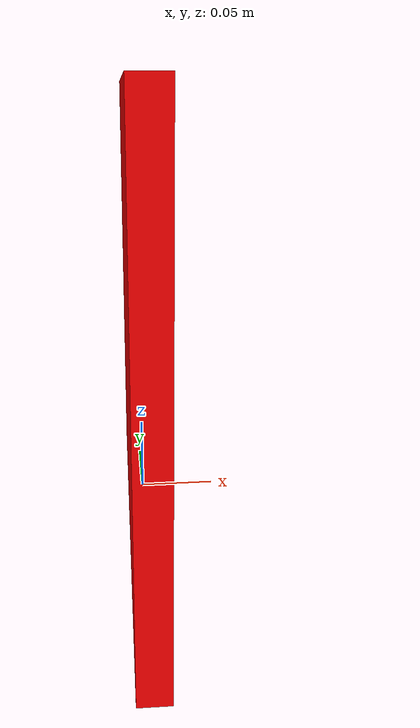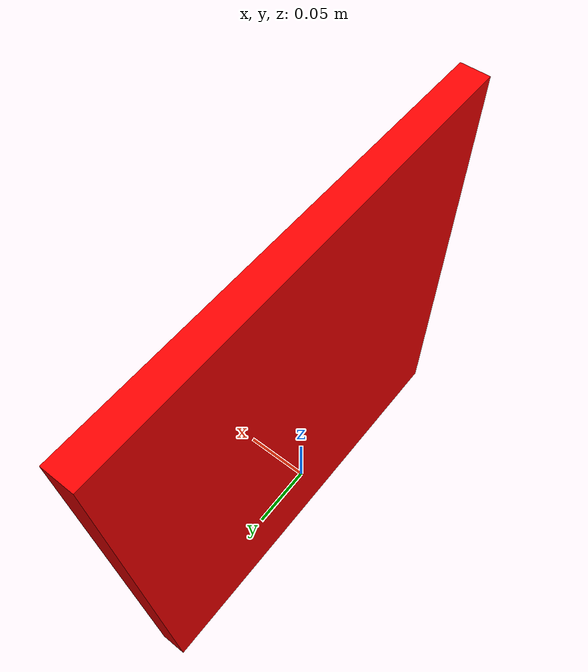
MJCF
<mujoco model="ping_pong_paddle">
    <worldbody>
        <body name="paddle_body" pos="0 0 0.12" quat="0.707107 0 0 -0.707107">
            <geom type="box" pos="0 0 0.0" size="0.16 0.01 0.16" rgba="1 0 0 1" group="1" solimp="0 0 1" solref="0.1 0.03"/>
            <site name="ft_frame" pos="0 0 0" size="0.01 0.01 0.01" rgba="1 0 0 1" type="sphere" group="1"/>
            <inertial pos="0 0 0" mass="3e-1" diaginertia="1e-2 1e-2 1e-2"/>
            <!-- This site was added for visualization. -->
            <site name="grip_site" pos="0 0 0" size="0.01 0.01 0.01" rgba="0 1 0 1" type="sphere" group="1"/>
            <!-- This site was added for visualization. -->
            <site name="grip_site_cylinder" pos="0 0 0" size="0.005 0.01" rgba="0 1 0 0.3" type="cylinder" group="1"/>
        </body>
    </worldbody>
    <sensor>
        <force name="force_ee" site="ft_frame"/>
        <torque name="torque_ee" site="ft_frame"/>
    </sensor>
</mujoco>
